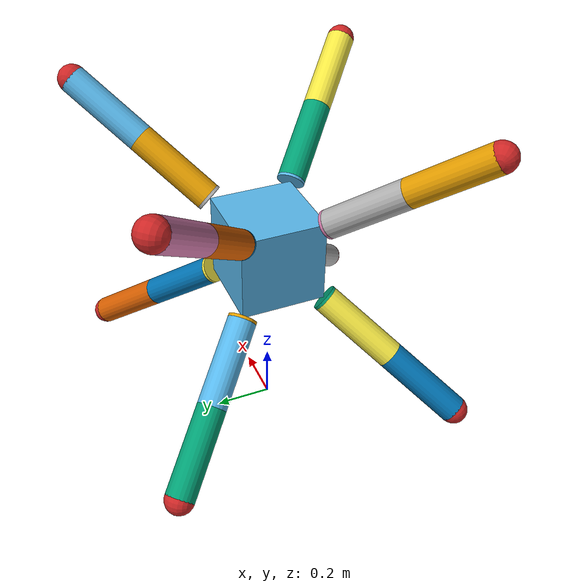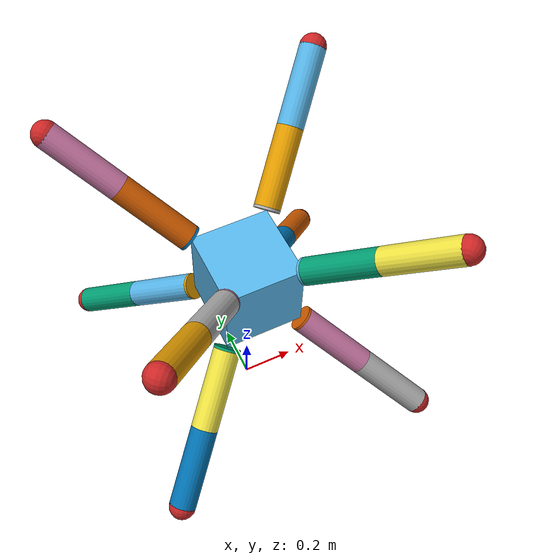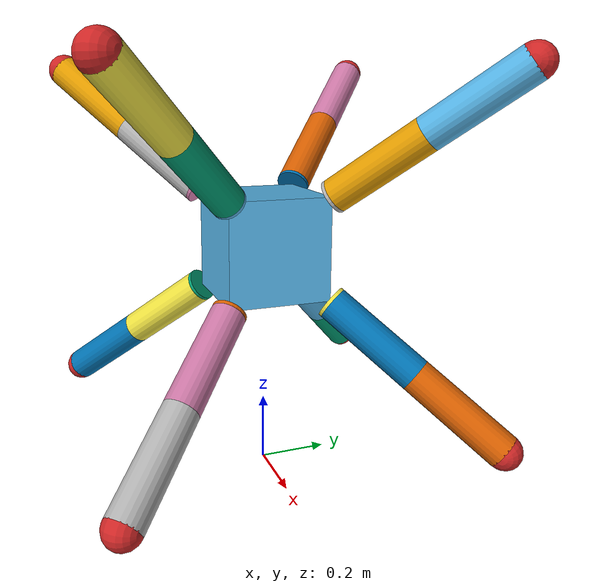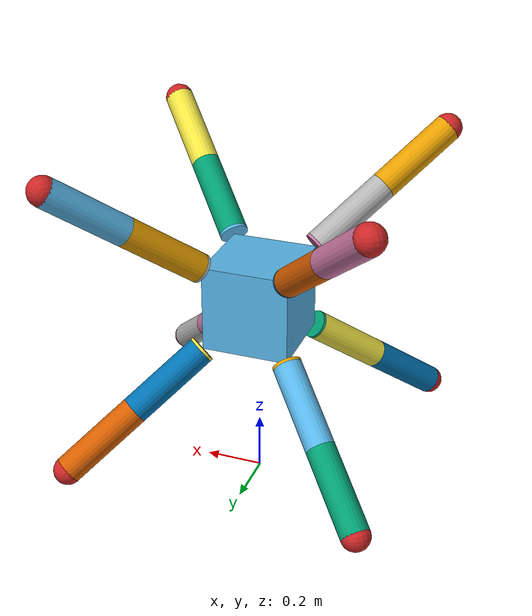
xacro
<?xml version="1.0"?>
<robot name="lily_octpus" xmlns:xacro="http://ros.org/wiki/xacro">

  <xacro:include filename="$(find lily_octpus_description)/urdf/base/base.urdf.xacro"/>
  <xacro:include filename="$(find lily_octpus_description)/urdf/leg/leg.urdf.xacro"/>
  <xacro:include filename="$(find lily_octpus_description)/urdf/params/robot.xacro"/>

  <!-- ===============  Link & Joint =============== -->
  <!-- Base -->
  <link name="base_footprint"/>
  <xacro:base parent="base_footprint"
              length="${body_length}"
              width="${body_width}"
              height="${body_height}"
              rho="${body_rho}">
  <!-- respawn point -->
	<origin xyz="0 0 ${body_height+base_clause_radius/2+LF_tibia_length+appendix_radius+0.01}"/>
  </xacro:base>

  <!-- LEG -->
  <xacro:leg prefix="BLF" parent="base_link" origin_xyz="${body_length/2} ${body_width/2} ${-body_height/2}" origin_rpy="0 ${M_PI/2-0.955316618} ${M_PI/4}"
             base_clause_radius="${base_clause_radius}" base_clause_length="${LF_base_clause_length}" base_clause_rpy="${LF_base_clause_rpy}" base_clause_rho="${base_clause_rho}" base_clause_torque="${base_clause_torque}" base_clause_velocity="${base_clause_velocity}"
             thigh_radius="${thigh_radius}" thigh_length="${LF_thigh_length}" thigh_rpy="${LF_thigh_rpy}" thigh_rho="${thigh_rho}" thigh_torque="${thigh_torque}" thigh_velocity="${thigh_velocity}"
             tibia_radius="${tibia_radius}" tibia_length="${LF_tibia_length}" tibia_rpy="${LF_tibia_rpy}" tibia_rho="${tibia_rho}" tibia_torque="${tibia_torque}" tibia_velocity="${tibia_velocity}"
             appendix_radius="${appendix_radius}" appendix_rho="${appendix_rho}"/>

	<xacro:leg prefix="BLH" parent="base_link" origin_xyz="${-body_length/2} ${body_width/2} ${-body_height/2}" origin_rpy="0 ${M_PI/2-0.955316618} ${3*M_PI/4}"
             base_clause_radius="${base_clause_radius}" base_clause_length="${LH_base_clause_length}" base_clause_rpy="${LH_base_clause_rpy}" base_clause_rho="${base_clause_rho}" base_clause_torque="${base_clause_torque}" base_clause_velocity="${base_clause_velocity}"
             thigh_radius="${thigh_radius}" thigh_length="${LH_thigh_length}" thigh_rpy="${LH_thigh_rpy}" thigh_rho="${thigh_rho}" thigh_torque="${thigh_torque}" thigh_velocity="${thigh_velocity}"
             tibia_radius="${tibia_radius}" tibia_length="${LH_tibia_length}" tibia_rpy="${LH_tibia_rpy}" tibia_rho="${tibia_rho}" tibia_torque="${tibia_torque}" tibia_velocity="${tibia_velocity}"
             appendix_radius="${appendix_radius}" appendix_rho="${appendix_rho}"/>

  <xacro:leg prefix="BRF" parent="base_link" origin_xyz="${body_length/2} ${-body_width/2} ${-body_height/2}" origin_rpy="0 ${M_PI/2-0.955316618} ${-M_PI/4}"
             base_clause_radius="${base_clause_radius}" base_clause_length="${RF_base_clause_length}" base_clause_rpy="${RF_base_clause_rpy}" base_clause_rho="${base_clause_rho}" base_clause_torque="${base_clause_torque}" base_clause_velocity="${base_clause_velocity}"
             thigh_radius="${thigh_radius}" thigh_length="${RF_thigh_length}" thigh_rpy="${RF_thigh_rpy}" thigh_rho="${thigh_rho}" thigh_torque="${thigh_torque}" thigh_velocity="${thigh_velocity}"
             tibia_radius="${tibia_radius}" tibia_length="${RF_tibia_length}" tibia_rpy="${RF_tibia_rpy}" tibia_rho="${tibia_rho}" tibia_torque="${tibia_torque}" tibia_velocity="${tibia_velocity}"
             appendix_radius="${appendix_radius}" appendix_rho="${appendix_rho}"/>

	<xacro:leg prefix="BRH" parent="base_link" origin_xyz="${-body_length/2} ${-body_width/2} ${-body_height/2}" origin_rpy="0 ${M_PI/2-0.955316618} ${-3*M_PI/4}"
             base_clause_radius="${base_clause_radius}" base_clause_length="${RH_base_clause_length}" base_clause_rpy="${RH_base_clause_rpy}" base_clause_rho="${base_clause_rho}" base_clause_torque="${base_clause_torque}" base_clause_velocity="${base_clause_velocity}"
             thigh_radius="${thigh_radius}" thigh_length="${RH_thigh_length}" thigh_rpy="${RH_thigh_rpy}" thigh_rho="${thigh_rho}" thigh_torque="${thigh_torque}" thigh_velocity="${thigh_velocity}"
             tibia_radius="${tibia_radius}" tibia_length="${RH_tibia_length}" tibia_rpy="${RH_tibia_rpy}" tibia_rho="${tibia_rho}" tibia_torque="${tibia_torque}" tibia_velocity="${tibia_velocity}"
             appendix_radius="${appendix_radius}" appendix_rho="${appendix_rho}"/>

  <xacro:leg prefix="TLF" parent="base_link" origin_xyz="${body_length/2} ${body_width/2} ${body_height/2}" origin_rpy="0 ${-M_PI/2+0.955316618} ${M_PI/4}"
             base_clause_radius="${base_clause_radius}" base_clause_length="${LF_base_clause_length}" base_clause_rpy="${LF_base_clause_rpy}" base_clause_rho="${base_clause_rho}" base_clause_torque="${base_clause_torque}" base_clause_velocity="${base_clause_velocity}"
             thigh_radius="${thigh_radius}" thigh_length="${LF_thigh_length}" thigh_rpy="${LF_thigh_rpy}" thigh_rho="${thigh_rho}" thigh_torque="${thigh_torque}" thigh_velocity="${thigh_velocity}"
             tibia_radius="${tibia_radius}" tibia_length="${LF_tibia_length}" tibia_rpy="${LF_tibia_rpy}" tibia_rho="${tibia_rho}" tibia_torque="${tibia_torque}" tibia_velocity="${tibia_velocity}"
             appendix_radius="${appendix_radius}" appendix_rho="${appendix_rho}"/>

	<xacro:leg prefix="TLH" parent="base_link" origin_xyz="${-body_length/2} ${body_width/2} ${body_height/2}" origin_rpy="0 ${-M_PI/2+0.955316618} ${3*M_PI/4}"
             base_clause_radius="${base_clause_radius}" base_clause_length="${LH_base_clause_length}" base_clause_rpy="${LH_base_clause_rpy}" base_clause_rho="${base_clause_rho}" base_clause_torque="${base_clause_torque}" base_clause_velocity="${base_clause_velocity}"
             thigh_radius="${thigh_radius}" thigh_length="${LH_thigh_length}" thigh_rpy="${LH_thigh_rpy}" thigh_rho="${thigh_rho}" thigh_torque="${thigh_torque}" thigh_velocity="${thigh_velocity}"
             tibia_radius="${tibia_radius}" tibia_length="${LH_tibia_length}" tibia_rpy="${LH_tibia_rpy}" tibia_rho="${tibia_rho}" tibia_torque="${tibia_torque}" tibia_velocity="${tibia_velocity}"
             appendix_radius="${appendix_radius}" appendix_rho="${appendix_rho}"/>

  <xacro:leg prefix="TRF" parent="base_link" origin_xyz="${body_length/2} ${-body_width/2} ${body_height/2}" origin_rpy="0 ${-M_PI/2+0.955316618} ${-M_PI/4}"
             base_clause_radius="${base_clause_radius}" base_clause_length="${RF_base_clause_length}" base_clause_rpy="${RF_base_clause_rpy}" base_clause_rho="${base_clause_rho}" base_clause_torque="${base_clause_torque}" base_clause_velocity="${base_clause_velocity}"
             thigh_radius="${thigh_radius}" thigh_length="${RF_thigh_length}" thigh_rpy="${RF_thigh_rpy}" thigh_rho="${thigh_rho}" thigh_torque="${thigh_torque}" thigh_velocity="${thigh_velocity}"
             tibia_radius="${tibia_radius}" tibia_length="${RF_tibia_length}" tibia_rpy="${RF_tibia_rpy}" tibia_rho="${tibia_rho}" tibia_torque="${tibia_torque}" tibia_velocity="${tibia_velocity}"
             appendix_radius="${appendix_radius}" appendix_rho="${appendix_rho}"/>

	<xacro:leg prefix="TRH" parent="base_link" origin_xyz="${-body_length/2} ${-body_width/2} ${body_height/2}" origin_rpy="0 ${-M_PI/2+0.955316618} ${-3*M_PI/4}"
             base_clause_radius="${base_clause_radius}" base_clause_length="${RH_base_clause_length}" base_clause_rpy="${RH_base_clause_rpy}" base_clause_rho="${base_clause_rho}" base_clause_torque="${base_clause_torque}" base_clause_velocity="${base_clause_velocity}"
             thigh_radius="${thigh_radius}" thigh_length="${RH_thigh_length}" thigh_rpy="${RH_thigh_rpy}" thigh_rho="${thigh_rho}" thigh_torque="${thigh_torque}" thigh_velocity="${thigh_velocity}"
             tibia_radius="${tibia_radius}" tibia_length="${RH_tibia_length}" tibia_rpy="${RH_tibia_rpy}" tibia_rho="${tibia_rho}" tibia_torque="${tibia_torque}" tibia_velocity="${tibia_velocity}"
             appendix_radius="${appendix_radius}" appendix_rho="${appendix_rho}"/>

  <!-- =============== Gazebo =============== -->
  <gazebo>
    <plugin name="gazebo_ros_control" filename="libgazebo_ros_control.so">
    </plugin>
  </gazebo>

  <!-- Base -->
  <xacro:base_gazebo/>

</robot>

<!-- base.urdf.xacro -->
<robot xmlns:xacro="http://ros.org/wiki/xacro">

  <xacro:include filename="$(find lily_octpus_description)/urdf/base/base.gazebo.xacro"/>

  <xacro:macro name="base" params="parent width height length rho *joint_origin">
	<joint name="base_link_joint" type="fixed">
	  <insert_block name="joint_origin"/>
	  <parent link="${parent}"/>
	  <child link="base_link"/>
	</joint>

	<link name="base_link">
	  <visual>
        <geometry>
            <box size="${length} ${width} ${height}"/>
        </geometry>
	  </visual>
	  <collision>
        <geometry>
            <box size="${length} ${width} ${height}"/>
        </geometry>
	  </collision>
	  <inertial>
		<mass value="${rho * length * width * height}"/>
		<inertia
			ixx="${rho * length * width * height / 12.0 * (width * width + height * height)}" ixy="0.0" ixz="0.0"
			iyy="${rho * length * width * height / 12.0 * (height * height + length * length)}" iyz="0.0"
			izz="${rho * length * width * height / 12.0 * (length * length + width * width)}"/>
	  </inertial>
	</link>
  </xacro:macro>

</robot>

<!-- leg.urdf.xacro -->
<robot xmlns:xacro="http://ros.org/wiki/xacro">
  <xacro:include filename="$(find lily_octpus_description)/urdf/coxa/coxa.urdf.xacro"/>
  <xacro:include filename="$(find lily_octpus_description)/urdf/base_clause/base_clause.urdf.xacro"/>
  <xacro:include filename="$(find lily_octpus_description)/urdf/thigh/thigh.urdf.xacro"/>
  <xacro:include filename="$(find lily_octpus_description)/urdf/tibia/tibia.urdf.xacro"/>
  <xacro:include filename="$(find lily_octpus_description)/urdf/appendix/appendix.urdf.xacro"/>

  <xacro:macro name="leg" params="prefix parent origin_xyz origin_rpy
                                  base_clause_radius base_clause_length base_clause_rpy base_clause_rho base_clause_torque base_clause_velocity
                                  thigh_radius thigh_length thigh_rpy thigh_rho thigh_torque thigh_velocity
                                  tibia_radius tibia_length tibia_rpy tibia_rho tibia_torque tibia_velocity
                                  appendix_radius appendix_rho">
    <!-- ===============  Link & Joint =============== -->
    <xacro:coxa prefix="${prefix}" parent="${parent}">
    <origin xyz="${origin_xyz}" rpy="${origin_rpy}"/>
    <axis xyz="0 0 1"/>
    </xacro:coxa>

    <xacro:base_clause prefix="${prefix}"
                                          radius="${base_clause_radius}"
                                          length="${base_clause_length}"
                                          rho="${base_clause_rho}"
                                          torque="${base_clause_torque}"
                                          velocity="${base_clause_velocity}">
    <origin xyz="0.0 0.0 0.0" rpy="${base_clause_rpy}"/>
    <axis xyz="1 0 0"/>
    </xacro:base_clause>

    <xacro:thigh prefix="${prefix}"
                 radius="${thigh_radius}"
                 length="${thigh_length}"
                 rho="${thigh_rho}"
                 torque="${thigh_torque}"
                 velocity="${thigh_velocity}">
    <origin xyz="${base_clause_length} 0.0 0.0" rpy="${thigh_rpy}"/>
    <axis xyz="0 0 1"/>
    </xacro:thigh>

    <xacro:tibia prefix="${prefix}"
                 radius="${tibia_radius}"
                 length="${tibia_length}"
                 rho="${tibia_rho}"
                 torque="${tibia_torque}"
                 velocity="${tibia_velocity}">
    <origin xyz="${thigh_length} 0.0 0.0" rpy="${tibia_rpy}"/>
    <axis xyz="0 0 1"/>
    </xacro:tibia>

    <xacro:appendix prefix="${prefix}"
                    radius="${appendix_radius}"
                    rho="${appendix_rho}">
    <origin xyz="${tibia_length} 0.0 0.0" rpy="0.0 0.0 0.0"/>
    <axis xyz="0 0 1"/>
    </xacro:appendix>

    <!-- ===============  Transmission =============== -->
    <xacro:coxa_trans prefix="${prefix}"/>
    <xacro:base_clause_trans prefix="${prefix}"/>
    <xacro:thigh_trans prefix="${prefix}"/>
    <xacro:tibia_trans prefix="${prefix}"/>
    <xacro:appendix_trans prefix="${prefix}"/>

    <!-- =============== Gazebo =============== -->
    <xacro:coxa_gazebo prefix="${prefix}"/>
    <xacro:base_clause_gazebo prefix="${prefix}"/>
    <xacro:thigh_gazebo prefix="${prefix}"/>
    <xacro:tibia_gazebo prefix="${prefix}"/>
    <xacro:appendix_gazebo prefix="${prefix}"/>

  </xacro:macro>
</robot>

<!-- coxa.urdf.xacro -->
<robot xmlns:xacro="http://ros.org/wiki/xacro">

  <xacro:include filename="$(find lily_octpus_description)/urdf/common.xacro"/>
  <xacro:include filename="$(find lily_octpus_description)/urdf/coxa/coxa.transmission.xacro"/>
  <xacro:include filename="$(find lily_octpus_description)/urdf/coxa/coxa.gazebo.xacro"/>

  <xacro:macro name="coxa" params="prefix parent *joint_origin *joint_axis">
	<joint name="${prefix}_coxa_joint" type="fixed">
	  <insert_block name="joint_origin"/>
	  <parent link="${parent}"/>
	  <child link="${prefix}_coxa_link"/>
      <origin xyz="0 0 0" rpy="0 0 0"/>
      <limit lower="-0.0" upper="0.0" effort="100" velocity="100" />
	  <insert_block name="joint_axis"/>
	  <dynamics friction="1.0" />
	</joint>
	<link name="${prefix}_coxa_link">
      <visual>
        <origin xyz="0 0 0" rpy="0 ${M_PI/2} 0"/>
        <geometry>
            <cylinder radius="0.00001" length="0.00001"/>
        </geometry>
	  </visual>
	  <collision>
		<origin xyz="0 0 0" rpy="0 ${M_PI/2} 0"/>
		<geometry>
		  <cylinder radius="0.00001" length="0.00001"/>
		</geometry>
	  </collision>
	  <inertial>
		<origin xyz="0 0 0" rpy="0 ${M_PI/2} 0"/>
		<cylinder_inertial mass="0.00001"
						   radius="0.00001" length="0.00001"/>
	  </inertial>
	</link>
  </xacro:macro>

</robot>

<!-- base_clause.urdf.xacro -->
<robot xmlns:xacro="http://ros.org/wiki/xacro">

  <xacro:include filename="$(find lily_octpus_description)/urdf/common.xacro"/>
  <xacro:include filename="$(find lily_octpus_description)/urdf/base_clause/base_clause.transmission.xacro"/>
  <xacro:include filename="$(find lily_octpus_description)/urdf/base_clause/base_clause.gazebo.xacro"/>

  <xacro:macro name="base_clause" params="prefix radius length rho torque velocity *joint_origin *joint_axis">
	<joint name="${prefix}_base_clause_joint" type="revolute">
	  <insert_block name="joint_origin"/>
	  <parent link="${prefix}_coxa_link"/>
	  <child link="${prefix}_base_clause_link"/>
      <origin xyz="0 0 0" rpy="0 0 0"/>
	  <limit lower="${-M_PI}" upper="${M_PI}" effort="${torque}" velocity="${velocity}" />
	  <insert_block name="joint_axis"/>
	  <dynamics friction="1.0" />
	</joint>

	<link name="${prefix}_base_clause_link">
	  <visual>
        <origin xyz="${length/2} 0 0" rpy="0 ${M_PI/2} 0"/>
        <geometry>
            <cylinder radius="${radius}" length="${length}"/>
        </geometry>
	  </visual>
	  <collision>
		<origin xyz="${length/2} 0 0" rpy="0 ${M_PI/2} 0"/>
		<geometry>
		  <cylinder radius="${radius}" length="${length}"/>
		</geometry>
	  </collision>
	  <inertial>
		<origin xyz="${length/2} 0 0" rpy="0 ${M_PI/2} 0"/>
		<cylinder_inertial mass="${rho * radius * radius * M_PI * length}"
						   radius="${radius}" length="${length}"/>
	  </inertial>
	</link>
  </xacro:macro>

</robot>

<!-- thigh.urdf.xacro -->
<robot xmlns:xacro="http://ros.org/wiki/xacro">

  <xacro:include filename="$(find lily_octpus_description)/urdf/common.xacro"/>
  <xacro:include filename="$(find lily_octpus_description)/urdf/thigh/thigh.transmission.xacro"/>
  <xacro:include filename="$(find lily_octpus_description)/urdf/thigh/thigh.gazebo.xacro"/>

  <xacro:macro name="thigh" params="prefix radius length rho torque velocity *joint_origin *joint_axis">
	<joint name="${prefix}_thigh_joint" type="revolute">
	  <insert_block name="joint_origin"/>
	  <parent link="${prefix}_base_clause_link"/>
	  <child link="${prefix}_thigh_link"/>
      <origin xyz="0 0 0" rpy="0 0 0"/>
	  <limit lower="${-M_PI}" upper="${M_PI}" effort="${torque}" velocity="${velocity}" />
	  <insert_block name="joint_axis"/>
	  <dynamics friction="1.0" />
	</joint>
	<link name="${prefix}_thigh_link">
	  <visual>
        <origin xyz="${length/2} 0 0" rpy="0 ${M_PI/2} 0"/>
        <geometry>
            <cylinder radius="${radius}" length="${length}"/>
        </geometry>
	  </visual>
	  <collision>
		<origin xyz="${length/2} 0 0" rpy="0 ${M_PI/2} 0"/>
		<geometry>
		  <cylinder radius="${radius}" length="${length}"/>
		</geometry>
	  </collision>
	  <inertial>
		<origin xyz="${length/2} 0 0" rpy="0 ${M_PI/2} 0"/>
		<cylinder_inertial mass="${rho * radius * radius * M_PI * length}"
						   radius="${radius}" length="${length}"/>
	  </inertial>
	</link>
  </xacro:macro>

</robot>

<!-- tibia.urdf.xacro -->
<robot xmlns:xacro="http://ros.org/wiki/xacro">

  <xacro:include filename="$(find lily_octpus_description)/urdf/common.xacro"/>
  <xacro:include filename="$(find lily_octpus_description)/urdf/tibia/tibia.transmission.xacro"/>
  <xacro:include filename="$(find lily_octpus_description)/urdf/tibia/tibia.gazebo.xacro"/>

  <xacro:macro name="tibia" params="prefix radius length rho torque velocity *joint_origin *joint_axis">
	<joint name="${prefix}_tibia_joint" type="revolute">
	  <insert_block name="joint_origin"/>
	  <parent link="${prefix}_thigh_link"/>
	  <child link="${prefix}_tibia_link"/>
      <origin xyz="0 0 0" rpy="0 0 0"/>
	  <limit lower="${-M_PI}" upper="${M_PI}" effort="${torque}" velocity="${velocity}" />
	  <insert_block name="joint_axis"/>
	</joint>
	<link name="${prefix}_tibia_link">
	  <visual>
        <origin xyz="${length/2} 0 0" rpy="0 ${M_PI/2} 0"/>
        <geometry>
            <cylinder radius="${radius}" length="${length}"/>
        </geometry>
	  </visual>
	  <collision>
		<origin xyz="${length/2} 0 0" rpy="0 ${M_PI/2} 0"/>
		<geometry>
		  <cylinder radius="${radius}" length="${length}"/>
		</geometry>
	  </collision>
	  <inertial>
		<origin xyz="${length/2} 0 0" rpy="0 ${M_PI/2} 0"/>
		<cylinder_inertial mass="${rho * radius * radius * M_PI * length}"
						   radius="${radius}" length="${length}"/>
	  </inertial>
	</link>
  </xacro:macro>

</robot>

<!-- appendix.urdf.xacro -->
<robot xmlns:xacro="http://ros.org/wiki/xacro">

  <xacro:include filename="$(find lily_octpus_description)/urdf/common.xacro"/>
  <xacro:include filename="$(find lily_octpus_description)/urdf/appendix/appendix.transmission.xacro"/>
  <xacro:include filename="$(find lily_octpus_description)/urdf/appendix/appendix.gazebo.xacro"/>

  <xacro:macro name="appendix" params="prefix radius rho *joint_origin *joint_axis">
	<joint name="${prefix}_appendix_joint" type="revolute">
	  <insert_block name="joint_origin"/>
	  <parent link="${prefix}_tibia_link"/>
	  <child link="${prefix}_appendix_link"/>
      <origin xyz="0 0 0" rpy="0 0 0"/>
	  <limit lower="-0.0" upper="0.0" effort="100" velocity="100" />
	  <insert_block name="joint_axis"/>
	  <dynamics friction="1.0" />
	</joint>

	<link name="${prefix}_appendix_link">
	  <visual>
        <origin xyz="0 0 0" rpy="0 0 0"/>
        <geometry>
            <sphere radius="${radius}"/>
        </geometry>>
	  </visual>
	  <collision>
		<origin xyz="0 0 0" rpy="0 0 0"/>
		<geometry>
		  <sphere radius="${radius}"/>
		</geometry>
	  </collision>
	  <inertial>
		<origin xyz="0 0 0" rpy="0 0 0"/>
        <mass value="${rho * 0.75 * M_PI * radius * radius * radius}"/>
		<inertia
			ixx="${0.4 * rho * 0.75 * M_PI * radius * radius *  radius * radius * radius}" ixy="0.0" ixz="0.0"
			iyy="${0.4 * rho * 0.75 * M_PI * radius * radius *  radius * radius * radius}" iyz="0.0"
			izz="${0.4 * rho * 0.75 * M_PI * radius * radius *  radius * radius * radius}"/>
      </inertial>
	</link>
  </xacro:macro>

</robot>

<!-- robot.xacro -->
<robot xmlns:xacro="http://ros.org/wiki/xacro">
  <property name="body_length" value="0.3"/>
  <property name="body_width" value="0.3"/>
  <property name="body_height" value="0.3"/>
  <property name="body_rho" value="${8283*0.1}"/>

  <property name="base_clause_length" value="0.01"/>
  <property name="thigh_length" value="0.3"/>
  <property name="tibia_length" value="0.3"/>

  <property name="LF_base_clause_length" value="${base_clause_length}"/>
  <property name="LF_thigh_length" value="${thigh_length}"/>
  <property name="LF_tibia_length" value="${tibia_length}"/>
  <property name="RF_base_clause_length" value="${base_clause_length}"/>
  <property name="RF_thigh_length" value="${thigh_length}"/>
  <property name="RF_tibia_length" value="${tibia_length}"/>
  <property name="LH_base_clause_length" value="${base_clause_length}"/>
  <property name="LH_thigh_length" value="${thigh_length}"/>
  <property name="LH_tibia_length" value="${tibia_length}"/>
  <property name="RH_base_clause_length" value="${base_clause_length}"/>
  <property name="RH_thigh_length" value="${thigh_length}"/>
  <property name="RH_tibia_length" value="${tibia_length}"/>

  <property name="base_clause_radius" value="0.05"/>
  <property name="thigh_radius" value="0.05"/>
  <property name="tibia_radius" value="0.05"/>
  <property name="appendix_radius" value="0.05"/>
  <property name="base_clause_rho" value="${1240*0.1}"/>
  <property name="thigh_rho" value="${1240*0.1}"/>
  <property name="tibia_rho" value="${1240*0.1}"/>
  <property name="appendix_rho" value="${1240*0.1}"/>
  <property name="base_clause_torque" value="100"/>
  <property name="thigh_torque" value="100"/>
  <property name="tibia_torque" value="100"/>
  <property name="base_clause_velocity" value="100"/>
  <property name="thigh_velocity" value="100"/>
  <property name="tibia_velocity" value="100"/>
  <property name="F_base_clause_roll" value="0.0"/>
  <property name="F_base_clause_pitch" value="0.0"/>
  <property name="F_base_clause_yaw" value="0.0"/>
  <property name="F_thigh_roll" value="-1.5708"/>
  <property name="F_thigh_pitch" value="0.0"/>
  <property name="F_thigh_yaw" value="0.0"/>
  <property name="F_tibia_roll" value="0.0"/>
  <property name="F_tibia_pitch" value="0.0"/>
  <property name="F_tibia_yaw" value="0.0"/>
  <property name="H_base_clause_roll" value="0.0"/>
  <property name="H_base_clause_pitch" value="0.0"/>
  <property name="H_base_clause_yaw" value="0.0"/>
  <property name="H_thigh_roll" value="-1.5708"/>
  <property name="H_thigh_pitch" value="0.0"/>
  <property name="H_thigh_yaw" value="0.0"/>
  <property name="H_tibia_roll" value="0.0"/>
  <property name="H_tibia_pitch" value="0.0"/>
  <property name="H_tibia_yaw" value="0.0"/>
  <property name="LF_base_clause_rpy" value="${F_base_clause_roll} ${F_base_clause_pitch} ${F_base_clause_yaw}"/>
  <property name="LF_thigh_rpy" value="${F_thigh_roll} ${F_thigh_pitch} ${F_thigh_yaw}"/>
  <property name="LF_tibia_rpy" value="${F_tibia_roll} ${F_tibia_pitch} ${F_tibia_yaw}"/>
  <property name="LH_base_clause_rpy" value="${H_base_clause_roll} ${H_base_clause_pitch} ${H_base_clause_yaw}"/>
  <property name="LH_thigh_rpy" value="${H_thigh_roll} ${H_thigh_pitch} ${H_thigh_yaw}"/>
  <property name="LH_tibia_rpy" value="${H_tibia_roll} ${H_tibia_pitch} ${H_tibia_yaw}"/>
  <property name="RF_base_clause_rpy" value="${F_base_clause_roll} ${F_base_clause_pitch} ${F_base_clause_yaw}"/>
  <property name="RF_thigh_rpy" value="${F_thigh_roll} ${F_thigh_pitch} ${F_thigh_yaw}"/>
  <property name="RF_tibia_rpy" value="${F_tibia_roll} ${F_tibia_pitch} ${F_tibia_yaw}"/>
  <property name="RH_base_clause_rpy" value="${H_base_clause_roll} ${H_base_clause_pitch} ${H_base_clause_yaw}"/>
  <property name="RH_thigh_rpy" value="${H_thigh_roll} ${H_thigh_pitch} ${H_thigh_yaw}"/>
  <property name="RH_tibia_rpy" value="${H_tibia_roll} ${H_tibia_pitch} ${H_tibia_yaw}"/>
  <property name="F_offset_x" value="0.07"/>
  <property name="H_offset_x" value="-0.07"/>
</robot>
